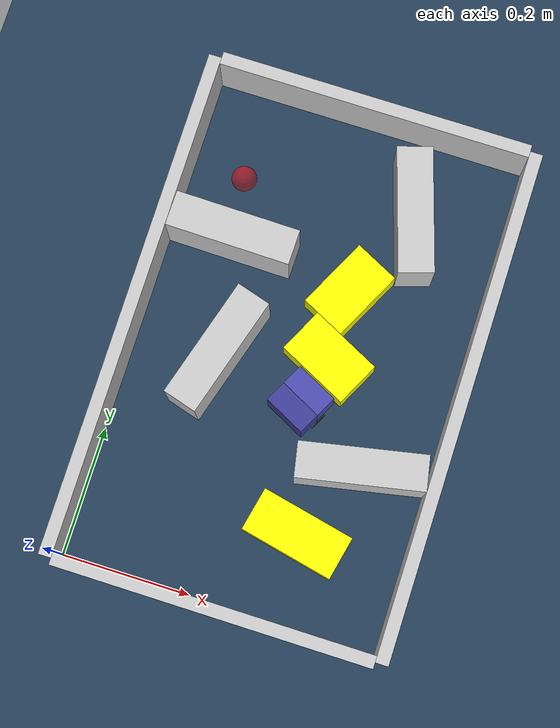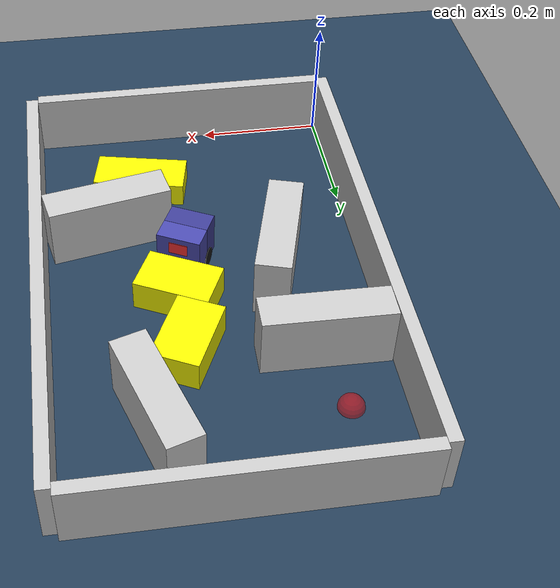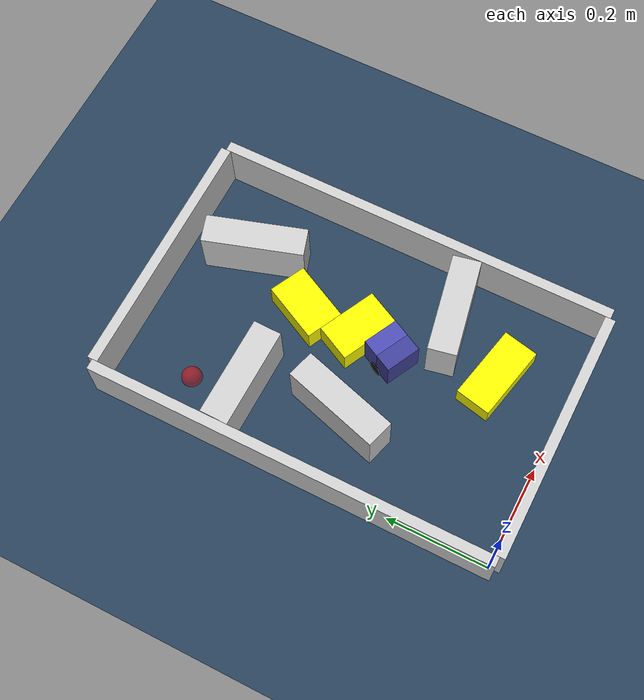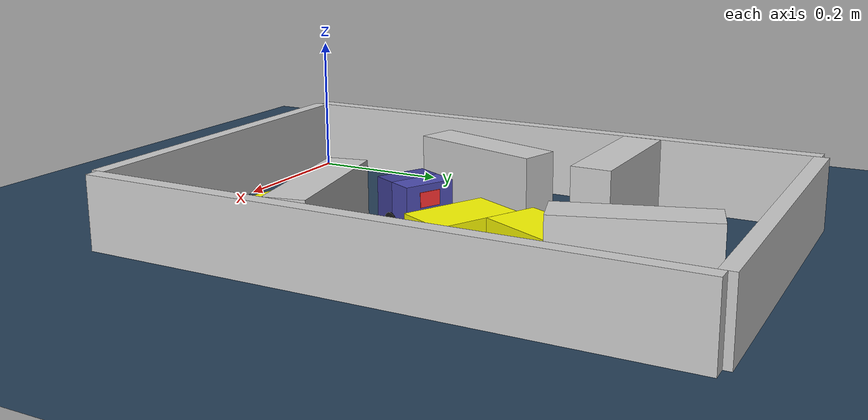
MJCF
<?xml version='1.0' encoding='utf-8'?>
<mujoco model="real_buildable">
  <compiler angle="degree" />
  <option timestep="0.002" integrator="implicitfast" iterations="100" cone="elliptic" />
  <default>
    <geom density="1" />
  </default>
  <asset>
    <texture builtin="gradient" height="3072" rgb1="0.3 0.5 0.7" rgb2="0 0 0" type="skybox" width="512" />
    <texture builtin="checker" height="300" mark="edge" markrgb="0.8 0.8 0.8" name="groundplane" rgb1="0.2 0.3 0.4" rgb2="0.1 0.2 0.3" type="2d" width="300" />
    <material name="groundplane" reflectance="0.2" texrepeat="5 5" texture="groundplane" texuniform="true" />
  </asset>
  <worldbody>
    <light dir="0 0 -1" directional="true" pos="0 0 1.5" />
    <geom name="floor" type="plane" condim="4" friction="0.5 0.005 0.001" material="groundplane" size="0 0 0.05" />
    <body name="walls">
      <geom name="wall_boundary_left" type="box" condim="4" friction="1.0 0.005 0.0001" rgba="0.8 0.8 0.8 1" pos="-0.010000 0.387500 0.050000" euler="0 0 0.000000" size="0.010000 0.397500 0.050000" />
      <geom name="wall_boundary_right" type="box" condim="4" friction="1.0 0.005 0.0001" rgba="0.8 0.8 0.8 1" pos="0.500000 0.387500 0.050000" euler="0 0 0.000000" size="0.010000 0.397500 0.050000" />
      <geom name="wall_boundary_bottom" type="box" condim="4" friction="1.0 0.005 0.0001" rgba="0.8 0.8 0.8 1" pos="0.245000 -0.010000 0.050000" euler="0 0 0.000000" size="0.245000 0.010000 0.050000" />
      <geom name="wall_boundary_top" type="box" condim="4" friction="1.0 0.005 0.0001" rgba="0.8 0.8 0.8 1" pos="0.245000 0.785000 0.050000" euler="0 0 0.000000" size="0.245000 0.010000 0.050000" />
      <geom name="wall_inner_1" type="box" condim="4" friction="1.0 0.005 0.0001" rgba="0.8 0.8 0.8 1" pos="0.389010 0.253420 0.050000" euler="0 0 191.237192" size="0.097500 0.027500 0.050000" />
      <geom name="wall_inner_2" type="box" condim="4" friction="1.0 0.005 0.0001" rgba="0.8 0.8 0.8 1" pos="0.132067 0.356856 0.050000" euler="0 0 73.532126" size="0.097500 0.027500 0.050000" />
      <geom name="wall_inner_3" type="box" condim="4" friction="1.0 0.005 0.0001" rgba="0.8 0.8 0.8 1" pos="0.098000 0.537000 0.050000" euler="0 0 179.100000" size="0.097500 0.027500 0.050000" />
      <geom name="wall_inner_4" type="box" condim="4" friction="1.0 0.005 0.0001" rgba="0.8 0.8 0.8 1" pos="0.351000 0.647000 0.050000" euler="0 0 107.500000" size="0.097500 0.027500 0.050000" />
    </body>
    <body name="car" pos="0.27272940654452343 0.32317356229568694 0.01" quat="0.85164351636244995 0 0 0.5241214754594602">
      <freejoint name="car_freejoint" />
      <inertial pos="0 0 0.0375" mass="0.35" diaginertia="0.000266 0.000266 0.000286" />
      <geom name="front_chassis_collision" type="box" pos="0.0175 0 0.0375" size="0.0175 0.035 0.0325" rgba="0.3 0.3 0.7 1" />
      <geom name="rear_chassis_collision" type="box" pos="-0.0175 0 0.0375" size="0.0175 0.035 0.0325" rgba="0.25 0.25 0.6 1" />
      <geom name="front_marker" type="box" pos="0.034 0 0.0505" size="0.002 0.015 0.01" rgba="1 0.2 0.2 1" contype="0" conaffinity="0" />
      <body name="rear_support_body" pos="-0.03 0 0.0025">
        <joint name="rear_caster_joint" type="ball" damping="0.0001" />
        <inertial pos="0 0 0" mass="0.025" diaginertia="0.000001 0.000001 0.000001" />
        <geom name="rear_support" type="sphere" pos="0 0 0" size="0.0025" friction="0 0 0" rgba="0.7 0.1 0.1 1" />
      </body>
      <body name="front_support_body" pos="0.03 0 0.0025">
        <joint name="front_caster_joint" type="ball" damping="0.0001" />
        <inertial pos="0 0 0" mass="0.025" diaginertia="0.000001 0.000001 0.000001" />
        <geom name="front_support" type="sphere" pos="0 0 0" size="0.0025" friction="0 0 0" rgba="0.1 0.7 0.1 1" />
      </body>
      <body name="left_wheel" pos="0 0.0375 0.015">
        <inertial pos="0 0 0" mass="0.05" diaginertia="0.000003 0.000006 0.000003" />
        <joint name="left_wheel_joint" type="hinge" axis="0 1 0" damping="0.01" armature="0.0001" />
        <geom name="left_wheel_collision" type="cylinder" size="0.015 0.0005" euler="90 0 0" rgba="0.1 0.1 0.1 1" />
      </body>
      <body name="right_wheel" pos="0 -0.0375 0.015">
        <inertial pos="0 0 0" mass="0.05" diaginertia="0.000003 0.000006 0.000003" />
        <joint name="right_wheel_joint" type="hinge" axis="0 1 0" damping="0.01" armature="0.0001" />
        <geom name="right_wheel_collision" type="cylinder" size="0.015 0.0005" euler="90 0 0" rgba="0.1 0.1 0.1 1" />
      </body>
    </body>
    <body name="obstacle_0_movable">
      <geom name="obstacle_0_movable" condim="4" pos="0.29332319758233938 0.40100386271214705 0.025000000000000001" friction="1 0.005 0.0001" rgba="1 1 0 1" size="0.037500 0.060000 0.025000" type="box" mass="0.1" quat="0.85026347758499166 0 0 0.52635731084984116" />
      <joint type="free" />
    </body>
    <body name="obstacle_1_movable">
      <geom name="obstacle_1_movable" condim="4" pos="0.29230594630787976 0.51044237894197253 0.025000000000000001" friction="1 0.005 0.0001" rgba="1 1 0 1" size="0.037500 0.060000 0.025000" type="box" mass="0.1" quat="0.97358635162389773 0 0 -0.22831910986964737" />
      <joint type="free" />
    </body>
    <body name="obstacle_2_movable">
      <geom name="obstacle_2_movable" condim="4" pos="0.3271759999999998 0.13467599999999977 0.02" friction="1 0.005 0.0001" rgba="1 1 0 1" size="0.035000 0.075000 0.020000" type="box" mass="0.1" quat="0.77859820000903734 0 0 0.62752278280767393" />
      <joint type="free" />
    </body>
    <site name="goal" type="sphere" pos="0.080000 0.640000 0.0" size="0.02" rgba="1 0 0 0.5" />
  </worldbody>
  <actuator>
    <velocity name="left_wheel_drive" joint="left_wheel_joint" ctrlrange="-25 25" kv="0.75" forcerange="-0.5 0.5" />
    <velocity name="right_wheel_drive" joint="right_wheel_joint" ctrlrange="-25 25" kv="0.75" forcerange="-0.5 0.5" />
  </actuator>
</mujoco>
